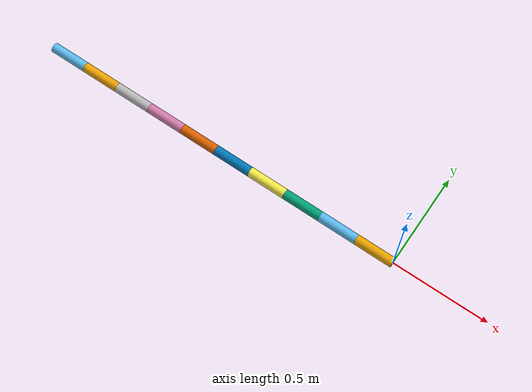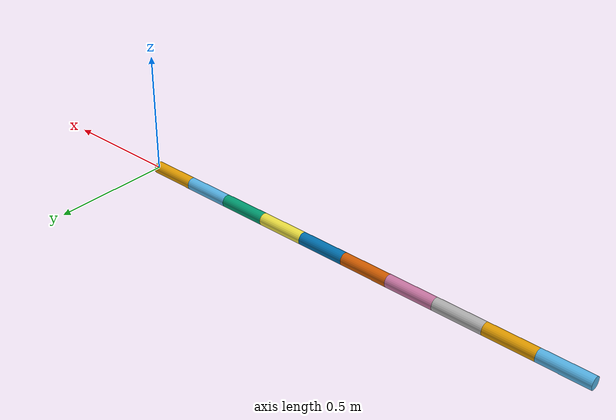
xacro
<?xml version="1.0"?>

<robot name="snake" xmlns:xacro="http://www.ros.org/wiki/xacro">

	<!-- snake properties -->
	<xacro:property name="num_links" value ="8" />
	<xacro:property name="link_length" value="0.2" />
	<xacro:property name="link_radius" value="0.025" />
	<xacro:property name="link_mass" value="0.2" />
	<xacro:property name="joint_friction" value="0.2" />
	<xacro:property name="joint_damping" value="0.001" />
	<xacro:property name="spring_mass" value="0.01" />
	<xacro:property name="spring_inertia" value="0.000006" />
	<xacro:property name="pi" value="3.1415" />
	<xacro:property name="joint_type" value="1" /> <!-- 1=simple_joint -1=springy_joint -->
	<xacro:property name="joint_minLimit" value="-${pi}/2" />
	<xacro:property name="joint_maxLimit" value="${pi}/2" />

	<xacro:macro name="snake_link" params="number">
		<link name="link_${number}">
			<collision>
				<geometry>
					<cylinder length="${link_length}" radius="${link_radius}" />
				</geometry>
				<origin xyz="-${link_length/2} 0 0" rpy="0 ${pi/2} 0" />
			</collision>

			<visual>
				<geometry>
					<cylinder length="${link_length}" radius="${link_radius}" />
				</geometry>
				<origin xyz="-${link_length/2} 0 0" rpy="0 ${pi/2} 0" />
			</visual>

			<inertial>
				<origin xyz="-${link_length/2} 0 0" rpy="0 0 0" />
				<mass value="${link_mass}" />
				<inertia ixx="0.00006" iyy="0.00006" izz="0.00006" ixy="0" ixz="0" iyz="0" />
			</inertial>
		</link>
	</xacro:macro>

	<xacro:macro name="snake_joint" params="parent child axis">
		<xacro:if value="${-joint_type-1}">
			<xacro:simple_joint parent="${parent}" child="${child}" axis="${axis}"/>
		</xacro:if>
		<xacro:if value="${joint_type-1}">
			<xacro:spring_joint parent="${parent}" child="${child}" axis="${axis}"/>
		</xacro:if>
	</xacro:macro>

	<!-- Spring joints are joints with a center springy link-->
	<xacro:macro name="spring_joint" params="parent child axis">
		<!-- Springy joint -->
		<joint name="joint_${parent}_m" type="revolute">
			<limit effort="1000.0" lower="${joint_minLimit}" upper="${joint_maxLimit}" velocity="10" />
			<dynamics damping="${joint_damping}" friction="${joint_friction}" />
			<parent link="link_${parent}" />
			<child link="spring_${parent}" />
			<origin xyz="-${link_length} 0 0" />
			<axis xyz="${axis}" />
		</joint>
		<link name="spring_${parent}">
			<visual>
				<geometry>
					<cylinder length="${2*link_radius}" radius="0.001" />
				</geometry>
				<origin xyz="0 0 0" rpy="${pi} 0 0" />
			</visual>
			<inertial>
				<mass value="${spring_mass}" />
				<inertia ixx="${spring_inertia}" ixy="0.0" ixz="0.0" iyy="${spring_inertia}" iyz="0.0" izz="${spring_inertia}" />
			</inertial>
		</link>
		<joint name="joint_${parent}_${child}" type="revolute">
			<limit effort="1000.0" lower="${joint_minLimit}" upper="${joint_maxLimit}" velocity="10" />
			<dynamics damping="${joint_damping}" friction="${joint_friction}" />
			<parent link="spring_${parent}" />
			<child link="link_${child}" />
			<origin xyz="0 0 0" rpy="0 0 0" />
			<axis xyz="${axis}" />
		</joint>
	</xacro:macro>

	<!-- Simple joints are simple, lightly damped and frictioned joints-->
	<xacro:macro name="simple_joint" params="parent child axis">
		<!-- Simple joint -->
		<joint name="joint_${parent}_${child}" type="revolute">
			<limit effort="1000.0" lower="${joint_minLimit}" upper="${joint_maxLimit}" velocity="10" />
			<dynamics damping="${joint_damping}" friction="${joint_friction}" />
			<parent link="link_${parent}" />
			<child link="link_${child}" />
			<origin xyz="-${link_length} 0 0" />
			<axis xyz="${axis}" />
		</joint>
	</xacro:macro>

	<xacro:macro name="snake_tail" params="links_qty flip_axis">
		<xacro:if value="${flip_axis}">
					<xacro:snake_joint parent="${links_qty}" child="${links_qty-1}" axis="1 0 0" />
		</xacro:if>
		<xacro:if value="${1-flip_axis}">
					<xacro:snake_joint parent="${links_qty}" child="${links_qty-1}" axis="0 1 0" />
		</xacro:if>
		<xacro:snake_link number="${links_qty-1}" />
		<xacro:if value="${links_qty}">
			<xacro:snake_tail links_qty="${links_qty-1}" flip_axis="${1-flip_axis}" />
		</xacro:if>
	</xacro:macro>

	<xacro:macro name="snake" params="links_qty">
		<xacro:snake_link number="${links_qty}" />
		<xacro:snake_tail links_qty="${links_qty}" flip_axis="0"/>
	</xacro:macro>

	<xacro:snake links_qty="${num_links}" />
</robot>
